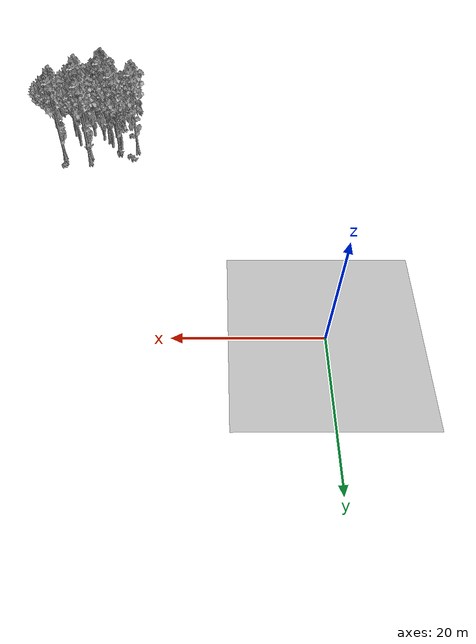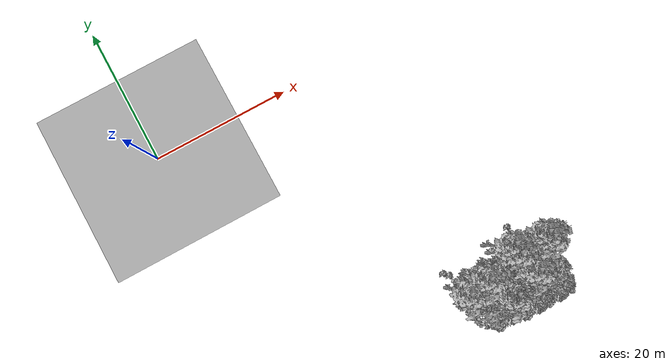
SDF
<sdf version="1.7">
 <world name="default">
  <model name="ground_plane">
   <static>1</static>
   <link name="link">
    <collision name="collision">
     <pose>-50 0 0 0 -0 0</pose>
     <geometry><plane><normal>0 0 1</normal><size>80 80</size></plane></geometry>
     <surface><contact><ode><min_depth>0.01</min_depth><max_vel>0</max_vel></ode></contact></surface>
    </collision>
    <visual name="grass">
     <cast_shadows>0</cast_shadows>
     <geometry>
      <mesh>
       <scale>0.46714285714285714 0.46714285714285714 0.1</scale>
       <uri>file://grass_plane/meshes/grass_plane.dae</uri>
      </mesh>
     </geometry>
    </visual>
   </link>
  </model>
  <model name="Tree 44">
   <static>1</static>
   <pose>31.30895781776698 -37.495344723400514 0 1.57079 -0 0</pose>
   <link name="link">
    <collision name="collision">
     <geometry><mesh><scale>3.5 5 3.5</scale><uri>model://tree_9/meshes/tree_9.obj</uri></mesh></geometry>
    </collision>
    <visual name="visual">
     <geometry><mesh><scale>3.5 5 3.5</scale><uri>model://tree_9/meshes/tree_9.obj</uri></mesh></geometry>
    </visual>
   </link>
  </model>
  <model name="Tree 73">
   <static>1</static>
   <pose>35.01483483890141 -35.983680115930994 0 1.57079 -0 0</pose>
   <link name="link">
    <collision name="collision">
     <geometry><mesh><scale>3.5 5 3.5</scale><uri>model://tree_9/meshes/tree_9.obj</uri></mesh></geometry>
    </collision>
    <visual name="visual">
     <geometry><mesh><scale>3.5 5 3.5</scale><uri>model://tree_9/meshes/tree_9.obj</uri></mesh></geometry>
    </visual>
   </link>
  </model>
  <model name="Tree 211">
   <static>1</static>
   <pose>34.03747620699991 -32.04799387134882 0 1.57079 -0 0</pose>
   <link name="link">
    <collision name="collision">
     <geometry><mesh><scale>3.5 5 3.5</scale><uri>model://tree_9/meshes/tree_9.obj</uri></mesh></geometry>
    </collision>
    <visual name="visual">
     <geometry><mesh><scale>3.5 5 3.5</scale><uri>model://tree_9/meshes/tree_9.obj</uri></mesh></geometry>
    </visual>
   </link>
  </model>
  <model name="Tree 243">
   <static>1</static>
   <pose>33.90135338610969 -38.394348675016275 0 1.57079 -0 0</pose>
   <link name="link">
    <collision name="collision">
     <geometry><mesh><scale>3.5 5 3.5</scale><uri>model://tree_2/meshes/tree_2.obj</uri></mesh></geometry>
    </collision>
    <visual name="visual">
     <geometry><mesh><scale>3.5 5 3.5</scale><uri>model://tree_2/meshes/tree_2.obj</uri></mesh></geometry>
    </visual>
   </link>
  </model>
  <model name="Tree 269">
   <static>1</static>
   <pose>30.660498212444807 -35.689384302219935 0 1.57079 -0 0</pose>
   <link name="link">
    <collision name="collision">
     <geometry><mesh><scale>3.5 5 3.5</scale><uri>model://tree_2/meshes/tree_2.obj</uri></mesh></geometry>
    </collision>
    <visual name="visual">
     <geometry><mesh><scale>3.5 5 3.5</scale><uri>model://tree_2/meshes/tree_2.obj</uri></mesh></geometry>
    </visual>
   </link>
  </model>
  <model name="Tree 275">
   <static>1</static>
   <pose>29.215078295958037 -35.11806358766733 0 1.57079 -0 0</pose>
   <link name="link">
    <collision name="collision">
     <geometry><mesh><scale>3.5 5 3.5</scale><uri>model://tree_2/meshes/tree_2.obj</uri></mesh></geometry>
    </collision>
    <visual name="visual">
     <geometry><mesh><scale>3.5 5 3.5</scale><uri>model://tree_2/meshes/tree_2.obj</uri></mesh></geometry>
    </visual>
   </link>
  </model>
  <model name="Tree 278">
   <static>1</static>
   <pose>30.329168697547473 -38.01048259740661 0 1.57079 -0 0</pose>
   <link name="link">
    <collision name="collision">
     <geometry><mesh><scale>3.5 5 3.5</scale><uri>model://tree_2/meshes/tree_2.obj</uri></mesh></geometry>
    </collision>
    <visual name="visual">
     <geometry><mesh><scale>3.5 5 3.5</scale><uri>model://tree_2/meshes/tree_2.obj</uri></mesh></geometry>
    </visual>
   </link>
  </model>
  <model name="Tree 340">
   <static>1</static>
   <pose>38.28782863965232 -33.40601923715985 0 1.57079 -0 0</pose>
   <link name="link">
    <collision name="collision">
     <geometry><mesh><scale>3.5 5 3.5</scale><uri>model://tree_9/meshes/tree_9.obj</uri></mesh></geometry>
    </collision>
    <visual name="visual">
     <geometry><mesh><scale>3.5 5 3.5</scale><uri>model://tree_9/meshes/tree_9.obj</uri></mesh></geometry>
    </visual>
   </link>
  </model>
  <model name="Tree 399">
   <static>1</static>
   <pose>34.06264831228776 -33.198463882400276 0 1.57079 -0 0</pose>
   <link name="link">
    <collision name="collision">
     <geometry><mesh><scale>3.5 5 3.5</scale><uri>model://tree_9/meshes/tree_9.obj</uri></mesh></geometry>
    </collision>
    <visual name="visual">
     <geometry><mesh><scale>3.5 5 3.5</scale><uri>model://tree_9/meshes/tree_9.obj</uri></mesh></geometry>
    </visual>
   </link>
  </model>
  <model name="Tree 440">
   <static>1</static>
   <pose>36.964198458820064 -38.33971798639779 0 1.57079 -0 0</pose>
   <link name="link">
    <collision name="collision">
     <geometry><mesh><scale>3.5 5 3.5</scale><uri>model://tree_2/meshes/tree_2.obj</uri></mesh></geometry>
    </collision>
    <visual name="visual">
     <geometry><mesh><scale>3.5 5 3.5</scale><uri>model://tree_2/meshes/tree_2.obj</uri></mesh></geometry>
    </visual>
   </link>
  </model>
  <model name="Tree 465">
   <static>1</static>
   <pose>32.216462679151874 -37.36381485171747 0 1.57079 -0 0</pose>
   <link name="link">
    <collision name="collision">
     <geometry><mesh><scale>3.5 5 3.5</scale><uri>model://tree_2/meshes/tree_2.obj</uri></mesh></geometry>
    </collision>
    <visual name="visual">
     <geometry><mesh><scale>3.5 5 3.5</scale><uri>model://tree_2/meshes/tree_2.obj</uri></mesh></geometry>
    </visual>
   </link>
  </model>
  <model name="Tree 471">
   <static>1</static>
   <pose>31.43410126947512 -37.194409309701726 0 1.57079 -0 0</pose>
   <link name="link">
    <collision name="collision">
     <geometry><mesh><scale>3.5 5 3.5</scale><uri>model://tree_9/meshes/tree_9.obj</uri></mesh></geometry>
    </collision>
    <visual name="visual">
     <geometry><mesh><scale>3.5 5 3.5</scale><uri>model://tree_9/meshes/tree_9.obj</uri></mesh></geometry>
    </visual>
   </link>
  </model>
  <model name="Tree 510">
   <static>1</static>
   <pose>29.51847281369008 -34.17078055597158 0 1.57079 -0 0</pose>
   <link name="link">
    <collision name="collision">
     <geometry><mesh><scale>3.5 5 3.5</scale><uri>model://tree_9/meshes/tree_9.obj</uri></mesh></geometry>
    </collision>
    <visual name="visual">
     <geometry><mesh><scale>3.5 5 3.5</scale><uri>model://tree_9/meshes/tree_9.obj</uri></mesh></geometry>
    </visual>
   </link>
  </model>
  <model name="Tree 582">
   <static>1</static>
   <pose>26.686120211378878 -34.62479384629955 0 1.57079 -0 0</pose>
   <link name="link">
    <collision name="collision">
     <geometry><mesh><scale>3.5 5 3.5</scale><uri>model://tree_9/meshes/tree_9.obj</uri></mesh></geometry>
    </collision>
    <visual name="visual">
     <geometry><mesh><scale>3.5 5 3.5</scale><uri>model://tree_9/meshes/tree_9.obj</uri></mesh></geometry>
    </visual>
   </link>
  </model>
  <model name="Tree 586">
   <static>1</static>
   <pose>38.094947041997955 -32.66780111001174 0 1.57079 -0 0</pose>
   <link name="link">
    <collision name="collision">
     <geometry><mesh><scale>3.5 5 3.5</scale><uri>model://tree_9/meshes/tree_9.obj</uri></mesh></geometry>
    </collision>
    <visual name="visual">
     <geometry><mesh><scale>3.5 5 3.5</scale><uri>model://tree_9/meshes/tree_9.obj</uri></mesh></geometry>
    </visual>
   </link>
  </model>
  <model name="Tree 615">
   <static>1</static>
   <pose>35.94737744613667 -36.054819738429835 0 1.57079 -0 0</pose>
   <link name="link">
    <collision name="collision">
     <geometry><mesh><scale>3.5 5 3.5</scale><uri>model://tree_2/meshes/tree_2.obj</uri></mesh></geometry>
    </collision>
    <visual name="visual">
     <geometry><mesh><scale>3.5 5 3.5</scale><uri>model://tree_2/meshes/tree_2.obj</uri></mesh></geometry>
    </visual>
   </link>
  </model>
  <model name="Bush 24">
   <static>1</static>
   <pose>27.11109233219733 -32.778437444986864 0 1.57079 -0 0</pose>
   <link name="link">
    <collision name="collision">
     <geometry><mesh><scale>2 2 2</scale><uri>model://bush_2/meshes/bush_2.obj</uri></mesh></geometry>
     <surface><contact><collide_without_contact>false</collide_without_contact></contact></surface>
    </collision>
    <visual name="visual">
     <geometry><mesh><scale>2 2 2</scale><uri>model://bush_2/meshes/bush_2.obj</uri></mesh></geometry>
    </visual>
   </link>
  </model>
  <model name="Bush 39">
   <static>1</static>
   <pose>29.443087981721447 -39.035142385046235 0 1.57079 -0 0</pose>
   <link name="link">
    <collision name="collision">
     <geometry><mesh><scale>2 2 2</scale><uri>model://bush_1/meshes/bush_1.obj</uri></mesh></geometry>
     <surface><contact><collide_without_contact>false</collide_without_contact></contact></surface>
    </collision>
    <visual name="visual">
     <geometry><mesh><scale>2 2 2</scale><uri>model://bush_1/meshes/bush_1.obj</uri></mesh></geometry>
    </visual>
   </link>
  </model>
  <model name="Bush 106">
   <static>1</static>
   <pose>27.840496826871117 -38.226847630305926 0 1.57079 -0 0</pose>
   <link name="link">
    <collision name="collision">
     <geometry><mesh><scale>2 2 2</scale><uri>model://bush_2/meshes/bush_2.obj</uri></mesh></geometry>
     <surface><contact><collide_without_contact>false</collide_without_contact></contact></surface>
    </collision>
    <visual name="visual">
     <geometry><mesh><scale>2 2 2</scale><uri>model://bush_2/meshes/bush_2.obj</uri></mesh></geometry>
    </visual>
   </link>
  </model>
  <model name="Bush 173">
   <static>1</static>
   <pose>31.88267281849076 -39.84751947924909 0 1.57079 -0 0</pose>
   <link name="link">
    <collision name="collision">
     <geometry><mesh><scale>2 2 2</scale><uri>model://bush_0/meshes/bush_0.obj</uri></mesh></geometry>
     <surface><contact><collide_without_contact>false</collide_without_contact></contact></surface>
    </collision>
    <visual name="visual">
     <geometry><mesh><scale>2 2 2</scale><uri>model://bush_0/meshes/bush_0.obj</uri></mesh></geometry>
    </visual>
   </link>
  </model>
  <model name="Bush 211">
   <static>1</static>
   <pose>29.521510231737878 -34.32581974911489 0 1.57079 -0 0</pose>
   <link name="link">
    <collision name="collision">
     <geometry><mesh><scale>2 2 2</scale><uri>model://bush_2/meshes/bush_2.obj</uri></mesh></geometry>
     <surface><contact><collide_without_contact>false</collide_without_contact></contact></surface>
    </collision>
    <visual name="visual">
     <geometry><mesh><scale>2 2 2</scale><uri>model://bush_2/meshes/bush_2.obj</uri></mesh></geometry>
    </visual>
   </link>
  </model>
  <model name="Bush 340">
   <static>1</static>
   <pose>27.739831253073007 -33.404418228086044 0 1.57079 -0 0</pose>
   <link name="link">
    <collision name="collision">
     <geometry><mesh><scale>2 2 2</scale><uri>model://bush_2/meshes/bush_2.obj</uri></mesh></geometry>
     <surface><contact><collide_without_contact>false</collide_without_contact></contact></surface>
    </collision>
    <visual name="visual">
     <geometry><mesh><scale>2 2 2</scale><uri>model://bush_2/meshes/bush_2.obj</uri></mesh></geometry>
    </visual>
   </link>
  </model>
  <model name="Bush 390">
   <static>1</static>
   <pose>34.62814221749194 -35.4543602775476 0 1.57079 -0 0</pose>
   <link name="link">
    <collision name="collision">
     <geometry><mesh><scale>2 2 2</scale><uri>model://bush_4/meshes/bush_4.obj</uri></mesh></geometry>
     <surface><contact><collide_without_contact>false</collide_without_contact></contact></surface>
    </collision>
    <visual name="visual">
     <geometry><mesh><scale>2 2 2</scale><uri>model://bush_4/meshes/bush_4.obj</uri></mesh></geometry>
    </visual>
   </link>
  </model>
  <model name="Bush 418">
   <static>1</static>
   <pose>38.010806628072814 -31.45497193586376 0 1.57079 -0 0</pose>
   <link name="link">
    <collision name="collision">
     <geometry><mesh><scale>2 2 2</scale><uri>model://bush_2/meshes/bush_2.obj</uri></mesh></geometry>
     <surface><contact><collide_without_contact>false</collide_without_contact></contact></surface>
    </collision>
    <visual name="visual">
     <geometry><mesh><scale>2 2 2</scale><uri>model://bush_2/meshes/bush_2.obj</uri></mesh></geometry>
    </visual>
   </link>
  </model>
 </world>
</sdf>
